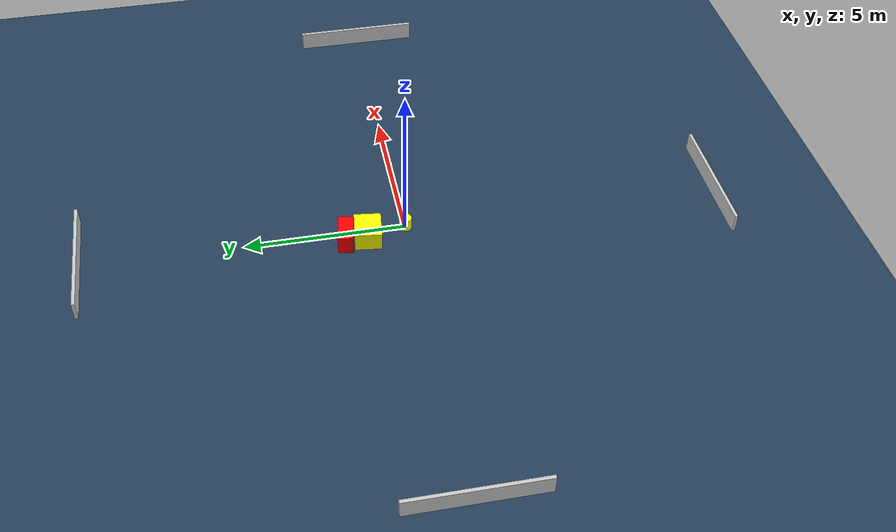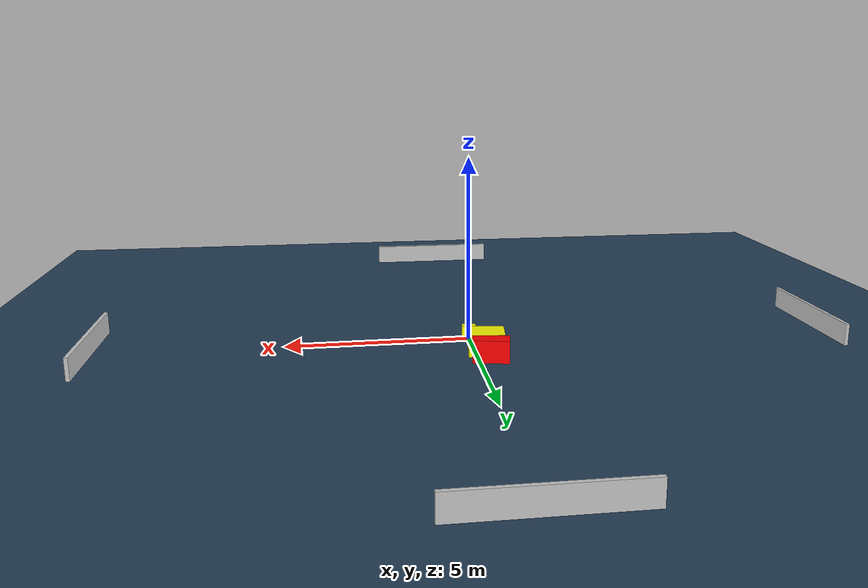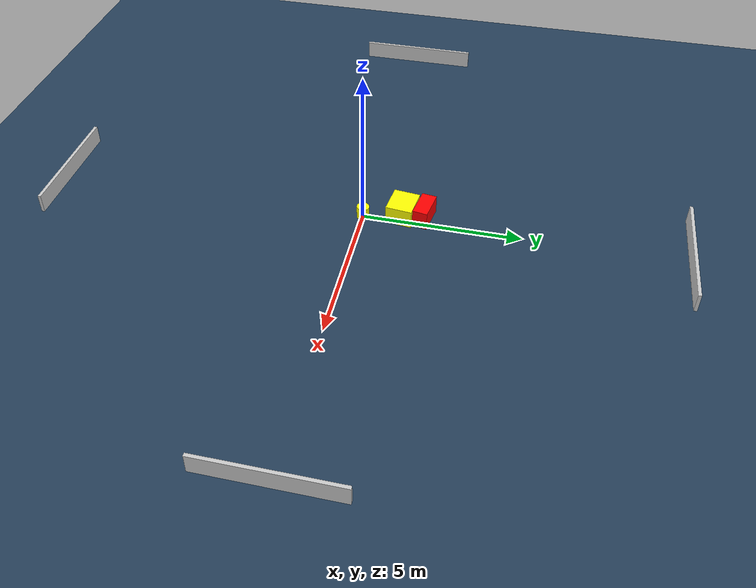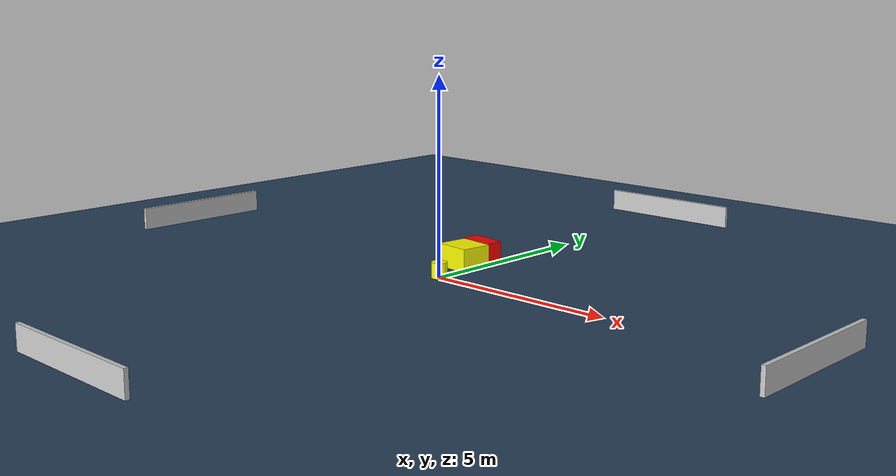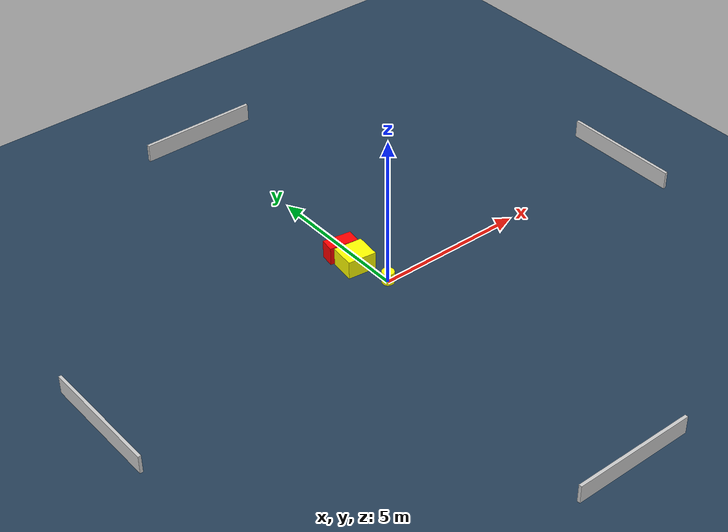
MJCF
<?xml version="1.0" ?>
<mujoco model="generated_environment">
  <option timestep="0.01" integrator="RK4" cone="elliptic"/>
  <default>
    <geom density="1"/>
  </default>
  <asset>
    <texture builtin="gradient" height="3072" name="skybox" rgb1="0.3 0.5 0.7" rgb2="0 0 0" type="skybox" width="512"/>
    <texture builtin="checker" height="300" name="groundplane" rgb1="0.2 0.3 0.4" rgb2="0.1 0.2 0.3" type="2d" width="300"/>
    <material name="groundplane" reflectance="0.2" texrepeat="5 5" texture="groundplane"/>
  </asset>
  <worldbody>
    <light dir="0 0 -1" directional="true" pos="0 0 1.5"/>
    <geom condim="3" friction="0.5 0.005 0.001" material="groundplane" name="floor" pos="0 0 0" size="0 0 0.05" type="plane"/>
    <body name="walls">
      <geom name="wall_1" condim="4" pos="-10.0 0.0 0.3" rgba="0.800000011920929 0.800000011920929 0.800000011920929 1.0" size="0.05 2.0 0.3" type="box"/>
      <geom name="wall_2" condim="4" pos="10.0 0.0 0.3" rgba="0.800000011920929 0.800000011920929 0.800000011920929 1.0" size="0.05 2.0 0.3" type="box"/>
      <geom name="wall_3" condim="4" pos="0.0 -10.0 0.3" rgba="0.800000011920929 0.800000011920929 0.800000011920929 1.0" size="2.0 0.05 0.3" type="box"/>
      <geom name="wall_4" condim="4" pos="0.0 10.0 0.3" rgba="0.800000011920929 0.800000011920929 0.800000011920929 1.0" size="2.0 0.05 0.3" type="box"/>
    </body>
    <body name="robot">
      <joint name="joint_x" type="slide" pos="0 0 0" axis="1 0 0"/>
      <joint name="joint_y" type="slide" pos="0 0 0" axis="0 1 0"/>
      <geom name="robot" type="cylinder" pos="0.0 0.0 0.2" size="0.2 0.2 0.0" mass="5.0" friction="1.0 0.005 0.0001" condim="4" rgba="1.0 1.0 0.0 1.0"/>
    </body>
    <body name="obstacle_1_movable">
      <geom name="obstacle_1_movable" condim="4" pos="-0.29407410383017324 1.21308202284176 0.3" euler="0 0 263.2529517139566" friction="0.0 0.005 0.001" rgba="1.0 1.0 0.0 1.0" size="0.41734973781823037 0.4744469765111763 0.3" type="box" mass="0.1"/>
      <joint type="free"/>
    </body>
    <body name="obstacle_2_static">
      <geom name="obstacle_2_static" condim="4" pos="-0.3093242001994715 1.9003359742919574 0.3" euler="0 0 170.76822999845342" friction="0.0 0.005 0.001" rgba="1.0 0.0 0.0 1.0" size="0.47805969439253854 0.2356221771617962 0.3" type="box"/>
    </body>
  </worldbody>
  <actuator>
    <motor name="actuator_x" joint="joint_x" gear="1" ctrlrange="-1 1"/>
    <motor name="actuator_y" joint="joint_y" gear="1" ctrlrange="-1 1"/>
  </actuator>
</mujoco>
